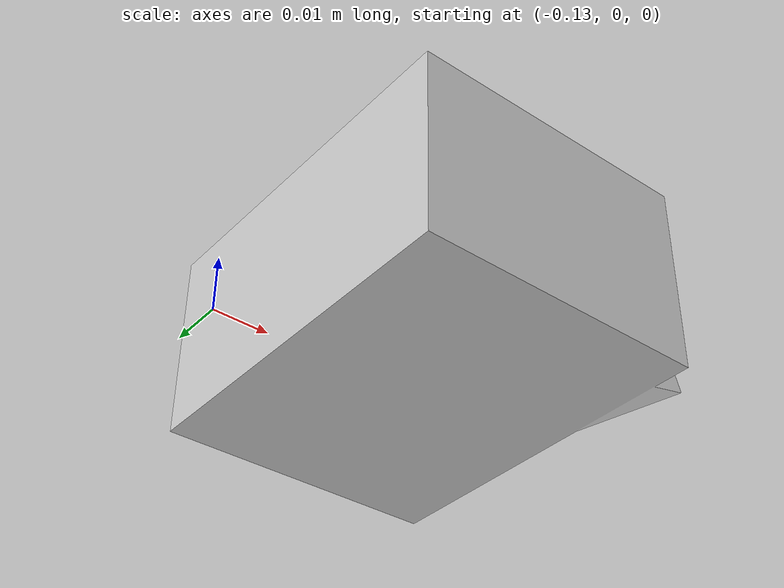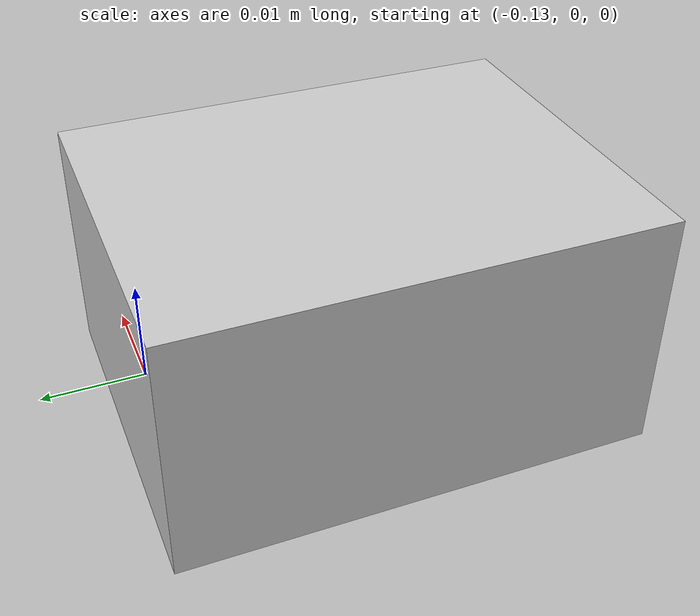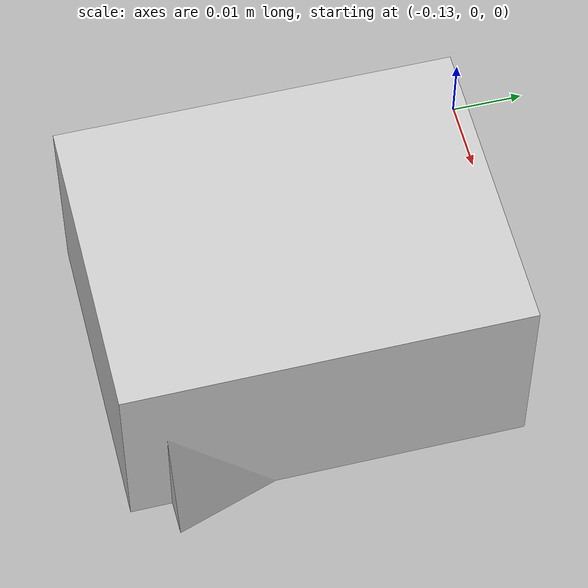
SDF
<?xml version="1.0" ?>
<sdf version="1.4">
  <model name="z_wenzen">
    <link name="z_wenzen_link">
      <inertial>
        <pose>-0.00 0.0 -0.005 0 0 0</pose>
        <mass>0.8</mass>
        <inertia>
          <ixx>0.001667</ixx>
	  <ixy>0.0</ixy>
	  <ixz>0.0</ixz>
	  <iyy>0.001667</iyy>
	  <iyz>0.0</iyz>
	  <izz>0.001667</izz>
	</inertia>
      </inertial>

      <visual name="z_wenzen_visual">
        <pose>-0.7 0 -0.5 1.57 0 0 </pose>
        <material>
	  <lighting>1</lighting>
	  <ambient>0.2 0.2 0.2 1</ambient>
	  <diffuse>0.8 0.8 0.8 1</diffuse>
	  <specular>0.2 0.2 0.2 1</specular>
	  <emissive>0.55 0.55 0.55 1</emissive>
          <script>
            <uri>model://z_wenzen/materials/scripts</uri>
            <uri>model://z_wenzen/materials/textures</uri>
            <name>Z_wenzen/Image</name>
          </script>
        </material>
        <geometry>
          <mesh>
            <uri>model://z_wenzen/meshes/z_wenzen.dae</uri>
	    <scale>0.30 0.40 0.300</scale>
          </mesh>
        </geometry>
      </visual>

      <collision name="z_wenzen_collision">
        <pose>-0.0 0.0 0.0 0.0 0.0 0.0</pose>
        <geometry>
	  <cylinder>
	    <radius>0.012</radius>
	    <length>0.04</length>
	  </cylinder>
        </geometry>
        <max_contacts>10</max_contacts>
        <surface>
          <contact>
	    <ode>
	      <max_vel>0.000</max_vel>
            </ode>
          </contact>
          <bounce/>
          <friction>
            <torsional>
              <ode/>
            </torsional>
            <ode>
              <mu>1</mu>
              <mu2>1</mu2>
            </ode>
          </friction>
        </surface>
      </collision>
      <self_collide>0</self_collide>
      <kinematic>0</kinematic>
    </link>
  </model>
</sdf>
